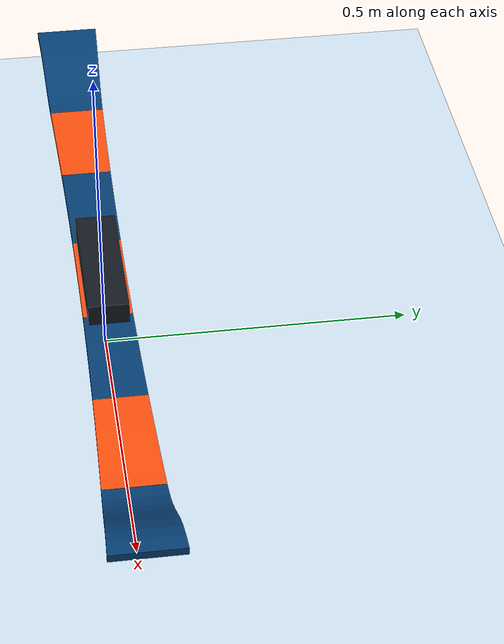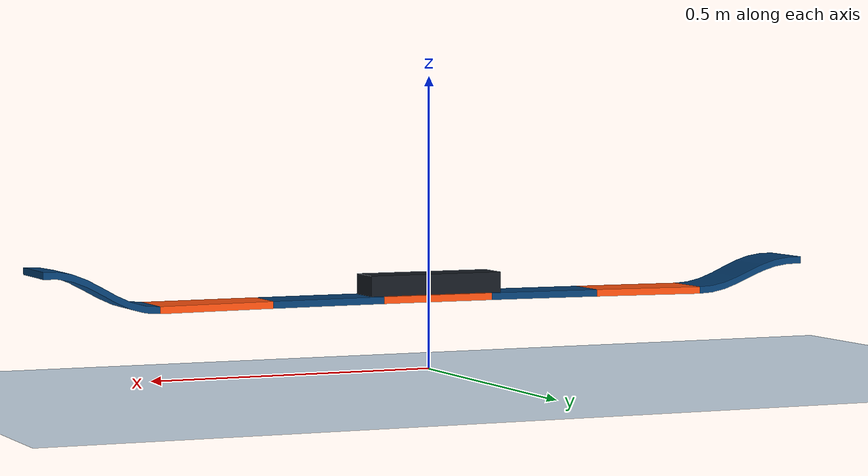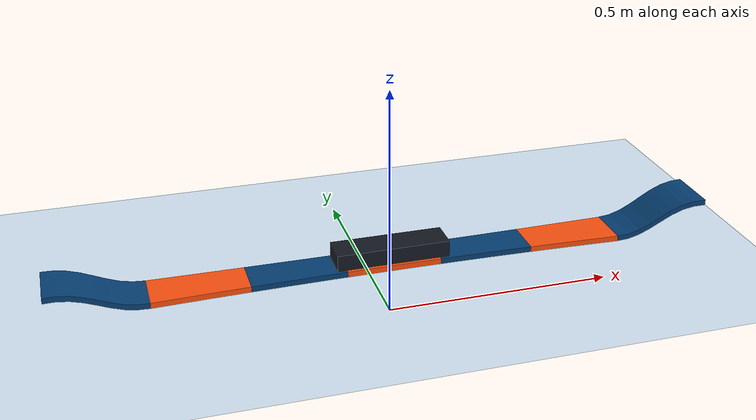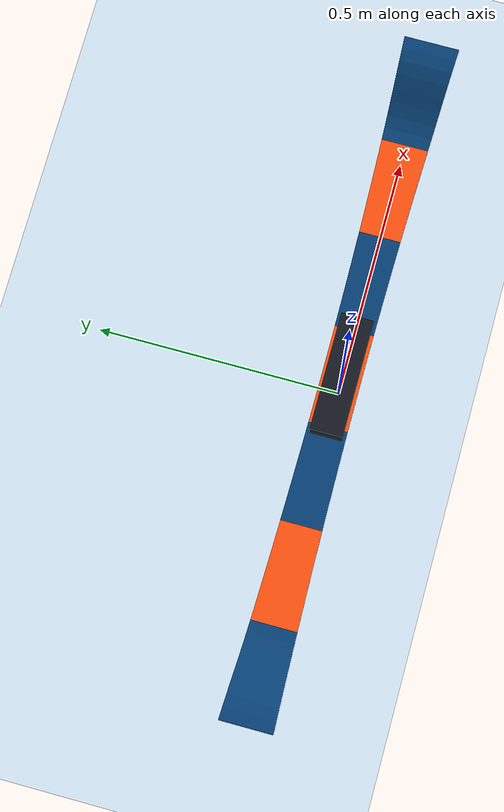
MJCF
<mujoco model="ski_single">
  <compiler angle="radian" autolimits="true" />
  <option timestep="0.00025" gravity="0 0 -9.81" integrator="implicitfast" solver="Newton" cone="elliptic" iterations="80" tolerance="1e-09" />
  <visual>
    <global offwidth="1400" offheight="1000" />
    <headlight ambient=".32 .34 .36" diffuse=".38 .38 .38" specular=".05 .05 .05" />
    <quality shadowsize="2048" />
  </visual>
  <asset>
    <texture name="sky" type="skybox" builtin="gradient" rgb1=".30 .52 .73" rgb2=".86 .92 .97" width="128" height="768" />
    <material name="snow" rgba=".84 .91 .97 1" specular=".18" shininess=".2" />
    <material name="ski_blue" rgba=".02 .25 .46 1" specular=".18" shininess=".2" />
    <material name="ski_orange" rgba="1 .32 .055 1" specular=".18" shininess=".2" />
    <material name="edge" rgba=".25 .32 .37 1" specular=".18" shininess=".2" />
    <material name="binding" rgba=".08 .10 .13 1" specular=".18" shininess=".2" />
    <material name="red" rgba=".95 .09 .12 1" specular=".18" shininess=".2" />
    <material name="blue" rgba=".04 .3 .85 1" specular=".18" shininess=".2" />
    <mesh name="ski_visual_0" file="../meshes/ski_visual_0.obj" />
    <mesh name="ski_base_0_0" file="../meshes/ski_base_0_0.obj" />
    <mesh name="ski_base_0_1" file="../meshes/ski_base_0_1.obj" />
    <mesh name="ski_visual_1" file="../meshes/ski_visual_1.obj" />
    <mesh name="ski_base_1_0" file="../meshes/ski_base_1_0.obj" />
    <mesh name="ski_base_1_1" file="../meshes/ski_base_1_1.obj" />
    <mesh name="ski_visual_2" file="../meshes/ski_visual_2.obj" />
    <mesh name="ski_base_2_0" file="../meshes/ski_base_2_0.obj" />
    <mesh name="ski_base_2_1" file="../meshes/ski_base_2_1.obj" />
    <mesh name="ski_visual_3" file="../meshes/ski_visual_3.obj" />
    <mesh name="ski_base_3_0" file="../meshes/ski_base_3_0.obj" />
    <mesh name="ski_base_3_1" file="../meshes/ski_base_3_1.obj" />
    <mesh name="ski_visual_4" file="../meshes/ski_visual_4.obj" />
    <mesh name="ski_base_4_0" file="../meshes/ski_base_4_0.obj" />
    <mesh name="ski_base_4_1" file="../meshes/ski_base_4_1.obj" />
    <mesh name="ski_visual_5" file="../meshes/ski_visual_5.obj" />
    <mesh name="ski_base_5_0" file="../meshes/ski_base_5_0.obj" />
    <mesh name="ski_base_5_1" file="../meshes/ski_base_5_1.obj" />
    <mesh name="ski_visual_6" file="../meshes/ski_visual_6.obj" />
    <mesh name="ski_base_6_0" file="../meshes/ski_base_6_0.obj" />
    <mesh name="ski_base_6_1" file="../meshes/ski_base_6_1.obj" />
  </asset>
  <worldbody>
    <light directional="true" pos="0 0 30" dir=".2 1 -.45" diffuse=".95 .94 .92" />
    <geom name="snow_surface" type="plane" size="8 4 .1" material="snow" contype="1" conaffinity="6" condim="3" friction=".05 .0 .0" solref="0.006 1" solimp="0.9 0.95 0.002" margin="0" gap="0" />
    <body name="ski0_mount" pos="0 0 0.12">
      <freejoint name="ski0_free" />
      <inertial pos="0 0 .025" mass="0.25" diaginertia="0.0001213541667 0.001233333333 0.001288020833" />
      <geom name="ski0_binding" type="box" pos="0 0 .025" size=".12 .0325 .02" material="binding" contype="0" conaffinity="0" mass="0" group="2" />
      <site name="ski0_mount_frame" pos="0 0 .045" size=".01" group="5" />
      <body name="ski0_segment_3" pos="0 0 0">
        <inertial pos="0 0 0.004" mass="0.14285714285714285" diaginertia="7.414285714e-05 0.0004779047619 0.0005486190476" />
        <geom name="ski0_visual_3" type="mesh" mesh="ski_visual_3" pos="0 0 0" material="ski_orange" contype="0" conaffinity="0" mass="0" group="2" />
        <geom name="ski0_base_3_0" type="mesh" mesh="ski_base_3_0" pos="0 0 0" rgba=".1 .1 .12 0" contype="2" conaffinity="7" mass="0" group="3" condim="3" friction=".05 .0 .0" solref="0.006 1" solimp="0.9 0.95 0.002" margin="0" gap="0" />
        <geom name="ski0_edge_3_0_R" type="capsule" fromto="-0.1 -0.03728571429 -8.163265306e-05 0 -0.037 0" size="0.002" material="edge" contype="2" conaffinity="7" mass="0" group="3" condim="3" friction=".05 .0 .0" solref="0.006 1" solimp="0.9 0.95 0.002" margin="0" gap="0" />
        <geom name="ski0_edge_3_0_L" type="capsule" fromto="-0.1 0.03728571429 -8.163265306e-05 0 0.037 0" size="0.002" material="edge" contype="2" conaffinity="7" mass="0" group="3" condim="3" friction=".05 .0 .0" solref="0.006 1" solimp="0.9 0.95 0.002" margin="0" gap="0" />
        <geom name="ski0_base_3_1" type="mesh" mesh="ski_base_3_1" pos="0 0 0" rgba=".1 .1 .12 0" contype="2" conaffinity="7" mass="0" group="3" condim="3" friction=".05 .0 .0" solref="0.006 1" solimp="0.9 0.95 0.002" margin="0" gap="0" />
        <geom name="ski0_edge_3_1_R" type="capsule" fromto="0 -0.037 0 0.1 -0.03734693878 -8.163265306e-05" size="0.002" material="edge" contype="2" conaffinity="7" mass="0" group="3" condim="3" friction=".05 .0 .0" solref="0.006 1" solimp="0.9 0.95 0.002" margin="0" gap="0" />
        <geom name="ski0_edge_3_1_L" type="capsule" fromto="0 0.037 0 0.1 0.03734693878 -8.163265306e-05" size="0.002" material="edge" contype="2" conaffinity="7" mass="0" group="3" condim="3" friction=".05 .0 .0" solref="0.006 1" solimp="0.9 0.95 0.002" margin="0" gap="0" />
        <body name="ski0_segment_4" pos="0.1 0 0">
          <joint name="ski0_flex_4" type="hinge" axis="0 1 0" stiffness="325.0" damping="0.8" range="-0.3 0.3" armature="0" frictionloss="0" />
          <inertial pos="0.1 0 0.003673469388" mass="0.14285714285714285" diaginertia="7.938908391e-05 0.0004779047619 0.0005538652744" />
          <geom name="ski0_visual_4" type="mesh" mesh="ski_visual_4" pos="0.1 0 0" material="ski_blue" contype="0" conaffinity="0" mass="0" group="2" />
          <geom name="ski0_base_4_0" type="mesh" mesh="ski_base_4_0" pos="0.1 0 0" rgba=".1 .1 .12 0" contype="2" conaffinity="7" mass="0" group="3" condim="3" friction=".05 .0 .0" solref="0.006 1" solimp="0.9 0.95 0.002" margin="0" gap="0" />
          <geom name="ski0_edge_4_0_R" type="capsule" fromto="0 -0.03734693878 -8.163265306e-05 0.1 -0.0383877551 -0.0003265306122" size="0.002" material="edge" contype="2" conaffinity="7" mass="0" group="3" condim="3" friction=".05 .0 .0" solref="0.006 1" solimp="0.9 0.95 0.002" margin="0" gap="0" />
          <geom name="ski0_edge_4_0_L" type="capsule" fromto="0 0.03734693878 -8.163265306e-05 0.1 0.0383877551 -0.0003265306122" size="0.002" material="edge" contype="2" conaffinity="7" mass="0" group="3" condim="3" friction=".05 .0 .0" solref="0.006 1" solimp="0.9 0.95 0.002" margin="0" gap="0" />
          <geom name="ski0_base_4_1" type="mesh" mesh="ski_base_4_1" pos="0.1 0 0" rgba=".1 .1 .12 0" contype="2" conaffinity="7" mass="0" group="3" condim="3" friction=".05 .0 .0" solref="0.006 1" solimp="0.9 0.95 0.002" margin="0" gap="0" />
          <geom name="ski0_edge_4_1_R" type="capsule" fromto="0.1 -0.0383877551 -0.0003265306122 0.2 -0.04012244898 -0.0007346938776" size="0.002" material="edge" contype="2" conaffinity="7" mass="0" group="3" condim="3" friction=".05 .0 .0" solref="0.006 1" solimp="0.9 0.95 0.002" margin="0" gap="0" />
          <geom name="ski0_edge_4_1_L" type="capsule" fromto="0.1 0.0383877551 -0.0003265306122 0.2 0.04012244898 -0.0007346938776" size="0.002" material="edge" contype="2" conaffinity="7" mass="0" group="3" condim="3" friction=".05 .0 .0" solref="0.006 1" solimp="0.9 0.95 0.002" margin="0" gap="0" />
          <body name="ski0_segment_5" pos="0.2 0 0">
            <joint name="ski0_flex_5" type="hinge" axis="0 1 0" stiffness="325.0" damping="0.8" range="-0.3 0.3" armature="0" frictionloss="0" />
            <inertial pos="0.1 0 0.002693877551" mass="0.14285714285714285" diaginertia="9.622825807e-05 0.0004779047619 0.0005707044485" />
            <geom name="ski0_visual_5" type="mesh" mesh="ski_visual_5" pos="0.1 0 0" material="ski_orange" contype="0" conaffinity="0" mass="0" group="2" />
            <geom name="ski0_base_5_0" type="mesh" mesh="ski_base_5_0" pos="0.1 0 0" rgba=".1 .1 .12 0" contype="2" conaffinity="7" mass="0" group="3" condim="3" friction=".05 .0 .0" solref="0.006 1" solimp="0.9 0.95 0.002" margin="0" gap="0" />
            <geom name="ski0_edge_5_0_R" type="capsule" fromto="0 -0.04012244898 -0.0007346938776 0.1 -0.04255102041 -0.001306122449" size="0.002" material="edge" contype="2" conaffinity="7" mass="0" group="3" condim="3" friction=".05 .0 .0" solref="0.006 1" solimp="0.9 0.95 0.002" margin="0" gap="0" />
            <geom name="ski0_edge_5_0_L" type="capsule" fromto="0 0.04012244898 -0.0007346938776 0.1 0.04255102041 -0.001306122449" size="0.002" material="edge" contype="2" conaffinity="7" mass="0" group="3" condim="3" friction=".05 .0 .0" solref="0.006 1" solimp="0.9 0.95 0.002" margin="0" gap="0" />
            <geom name="ski0_base_5_1" type="mesh" mesh="ski_base_5_1" pos="0.1 0 0" rgba=".1 .1 .12 0" contype="2" conaffinity="7" mass="0" group="3" condim="3" friction=".05 .0 .0" solref="0.006 1" solimp="0.9 0.95 0.002" margin="0" gap="0" />
            <geom name="ski0_edge_5_1_R" type="capsule" fromto="0.1 -0.04255102041 -0.001306122449 0.2 -0.04567346939 -0.001975547373" size="0.002" material="edge" contype="2" conaffinity="7" mass="0" group="3" condim="3" friction=".05 .0 .0" solref="0.006 1" solimp="0.9 0.95 0.002" margin="0" gap="0" />
            <geom name="ski0_edge_5_1_L" type="capsule" fromto="0.1 0.04255102041 -0.001306122449 0.2 0.04567346939 -0.001975547373" size="0.002" material="edge" contype="2" conaffinity="7" mass="0" group="3" condim="3" friction=".05 .0 .0" solref="0.006 1" solimp="0.9 0.95 0.002" margin="0" gap="0" />
            <body name="ski0_segment_6" pos="0.2 0 0">
              <joint name="ski0_flex_6" type="hinge" axis="0 1 0" stiffness="325.0" damping="0.8" range="-0.3 0.3" armature="0" frictionloss="0" />
              <inertial pos="0.1 0 0.03645862651" mass="0.14285714285714285" diaginertia="0.0001279618611 0.0004779047619 0.0006024380516" />
              <geom name="ski0_visual_6" type="mesh" mesh="ski_visual_6" pos="0.1 0 0" material="ski_blue" contype="0" conaffinity="0" mass="0" group="2" />
              <geom name="ski0_base_6_0" type="mesh" mesh="ski_base_6_0" pos="0.1 0 0" rgba=".1 .1 .12 0" contype="2" conaffinity="7" mass="0" group="3" condim="3" friction=".05 .0 .0" solref="0.006 1" solimp="0.9 0.95 0.002" margin="0" gap="0" />
              <geom name="ski0_edge_6_0_R" type="capsule" fromto="0 -0.04567346939 -0.001975547373 0.1 -0.04948979592 0.03245862651" size="0.002" material="edge" contype="2" conaffinity="7" mass="0" group="3" condim="3" friction=".05 .0 .0" solref="0.006 1" solimp="0.9 0.95 0.002" margin="0" gap="0" />
              <geom name="ski0_edge_6_0_L" type="capsule" fromto="0 0.04567346939 -0.001975547373 0.1 0.04948979592 0.03245862651" size="0.002" material="edge" contype="2" conaffinity="7" mass="0" group="3" condim="3" friction=".05 .0 .0" solref="0.006 1" solimp="0.9 0.95 0.002" margin="0" gap="0" />
              <geom name="ski0_base_6_1" type="mesh" mesh="ski_base_6_1" pos="0.1 0 0" rgba=".1 .1 .12 0" contype="2" conaffinity="7" mass="0" group="3" condim="3" friction=".05 .0 .0" solref="0.006 1" solimp="0.9 0.95 0.002" margin="0" gap="0" />
              <geom name="ski0_edge_6_1_R" type="capsule" fromto="0.1 -0.04948979592 0.03245862651 0.2 -0.054 0.061" size="0.002" material="edge" contype="2" conaffinity="7" mass="0" group="3" condim="3" friction=".05 .0 .0" solref="0.006 1" solimp="0.9 0.95 0.002" margin="0" gap="0" />
              <geom name="ski0_edge_6_1_L" type="capsule" fromto="0.1 0.04948979592 0.03245862651 0.2 0.054 0.061" size="0.002" material="edge" contype="2" conaffinity="7" mass="0" group="3" condim="3" friction=".05 .0 .0" solref="0.006 1" solimp="0.9 0.95 0.002" margin="0" gap="0" />
            </body>
          </body>
        </body>
        <body name="ski0_segment_2" pos="-0.1 0 0">
          <joint name="ski0_flex_2" type="hinge" axis="0 1 0" stiffness="325.0" damping="0.8" range="-0.3 0.3" armature="0" frictionloss="0" />
          <inertial pos="-0.1 0 0.003673469388" mass="0.14285714285714285" diaginertia="7.844995141e-05 0.0004779047619 0.0005529261419" />
          <geom name="ski0_visual_2" type="mesh" mesh="ski_visual_2" pos="-0.1 0 0" material="ski_blue" contype="0" conaffinity="0" mass="0" group="2" />
          <geom name="ski0_base_2_0" type="mesh" mesh="ski_base_2_0" pos="-0.1 0 0" rgba=".1 .1 .12 0" contype="2" conaffinity="7" mass="0" group="3" condim="3" friction=".05 .0 .0" solref="0.006 1" solimp="0.9 0.95 0.002" margin="0" gap="0" />
          <geom name="ski0_edge_2_0_R" type="capsule" fromto="-0.2 -0.03957142857 -0.0007346938776 -0.1 -0.03814285714 -0.0003265306122" size="0.002" material="edge" contype="2" conaffinity="7" mass="0" group="3" condim="3" friction=".05 .0 .0" solref="0.006 1" solimp="0.9 0.95 0.002" margin="0" gap="0" />
          <geom name="ski0_edge_2_0_L" type="capsule" fromto="-0.2 0.03957142857 -0.0007346938776 -0.1 0.03814285714 -0.0003265306122" size="0.002" material="edge" contype="2" conaffinity="7" mass="0" group="3" condim="3" friction=".05 .0 .0" solref="0.006 1" solimp="0.9 0.95 0.002" margin="0" gap="0" />
          <geom name="ski0_base_2_1" type="mesh" mesh="ski_base_2_1" pos="-0.1 0 0" rgba=".1 .1 .12 0" contype="2" conaffinity="7" mass="0" group="3" condim="3" friction=".05 .0 .0" solref="0.006 1" solimp="0.9 0.95 0.002" margin="0" gap="0" />
          <geom name="ski0_edge_2_1_R" type="capsule" fromto="-0.1 -0.03814285714 -0.0003265306122 -2.775557562e-17 -0.03728571429 -8.163265306e-05" size="0.002" material="edge" contype="2" conaffinity="7" mass="0" group="3" condim="3" friction=".05 .0 .0" solref="0.006 1" solimp="0.9 0.95 0.002" margin="0" gap="0" />
          <geom name="ski0_edge_2_1_L" type="capsule" fromto="-0.1 0.03814285714 -0.0003265306122 -2.775557562e-17 0.03728571429 -8.163265306e-05" size="0.002" material="edge" contype="2" conaffinity="7" mass="0" group="3" condim="3" friction=".05 .0 .0" solref="0.006 1" solimp="0.9 0.95 0.002" margin="0" gap="0" />
          <body name="ski0_segment_1" pos="-0.2 0 0">
            <joint name="ski0_flex_1" type="hinge" axis="0 1 0" stiffness="325.0" damping="0.8" range="-0.3 0.3" armature="0" frictionloss="0" />
            <inertial pos="-0.1 0 0.002693877551" mass="0.14285714285714285" diaginertia="9.211758989e-05 0.0004779047619 0.0005665937804" />
            <geom name="ski0_visual_1" type="mesh" mesh="ski_visual_1" pos="-0.1 0 0" material="ski_orange" contype="0" conaffinity="0" mass="0" group="2" />
            <geom name="ski0_base_1_0" type="mesh" mesh="ski_base_1_0" pos="-0.1 0 0" rgba=".1 .1 .12 0" contype="2" conaffinity="7" mass="0" group="3" condim="3" friction=".05 .0 .0" solref="0.006 1" solimp="0.9 0.95 0.002" margin="0" gap="0" />
            <geom name="ski0_edge_1_0_R" type="capsule" fromto="-0.2 -0.04414285714 -0.001990609439 -0.1 -0.04157142857 -0.001306122449" size="0.002" material="edge" contype="2" conaffinity="7" mass="0" group="3" condim="3" friction=".05 .0 .0" solref="0.006 1" solimp="0.9 0.95 0.002" margin="0" gap="0" />
            <geom name="ski0_edge_1_0_L" type="capsule" fromto="-0.2 0.04414285714 -0.001990609439 -0.1 0.04157142857 -0.001306122449" size="0.002" material="edge" contype="2" conaffinity="7" mass="0" group="3" condim="3" friction=".05 .0 .0" solref="0.006 1" solimp="0.9 0.95 0.002" margin="0" gap="0" />
            <geom name="ski0_base_1_1" type="mesh" mesh="ski_base_1_1" pos="-0.1 0 0" rgba=".1 .1 .12 0" contype="2" conaffinity="7" mass="0" group="3" condim="3" friction=".05 .0 .0" solref="0.006 1" solimp="0.9 0.95 0.002" margin="0" gap="0" />
            <geom name="ski0_edge_1_1_R" type="capsule" fromto="-0.1 -0.04157142857 -0.001306122449 0 -0.03957142857 -0.0007346938776" size="0.002" material="edge" contype="2" conaffinity="7" mass="0" group="3" condim="3" friction=".05 .0 .0" solref="0.006 1" solimp="0.9 0.95 0.002" margin="0" gap="0" />
            <geom name="ski0_edge_1_1_L" type="capsule" fromto="-0.1 0.04157142857 -0.001306122449 0 0.03957142857 -0.0007346938776" size="0.002" material="edge" contype="2" conaffinity="7" mass="0" group="3" condim="3" friction=".05 .0 .0" solref="0.006 1" solimp="0.9 0.95 0.002" margin="0" gap="0" />
            <body name="ski0_segment_0" pos="-0.2 0 0">
              <joint name="ski0_flex_0" type="hinge" axis="0 1 0" stiffness="325.0" damping="0.8" range="-0.3 0.3" armature="0" frictionloss="0" />
              <inertial pos="-0.1 0 0.02828999528" mass="0.14285714285714285" diaginertia="0.0001173848397 0.0004779047619 0.0005918610301" />
              <geom name="ski0_visual_0" type="mesh" mesh="ski_visual_0" pos="-0.1 0 0" material="ski_blue" contype="0" conaffinity="0" mass="0" group="2" />
              <geom name="ski0_base_0_0" type="mesh" mesh="ski_base_0_0" pos="-0.1 0 0" rgba=".1 .1 .12 0" contype="2" conaffinity="7" mass="0" group="3" condim="3" friction=".05 .0 .0" solref="0.006 1" solimp="0.9 0.95 0.002" margin="0" gap="0" />
              <geom name="ski0_edge_0_0_R" type="capsule" fromto="-0.2 -0.051 0.046 -0.1 -0.04728571429 0.02428999528" size="0.002" material="edge" contype="2" conaffinity="7" mass="0" group="3" condim="3" friction=".05 .0 .0" solref="0.006 1" solimp="0.9 0.95 0.002" margin="0" gap="0" />
              <geom name="ski0_edge_0_0_L" type="capsule" fromto="-0.2 0.051 0.046 -0.1 0.04728571429 0.02428999528" size="0.002" material="edge" contype="2" conaffinity="7" mass="0" group="3" condim="3" friction=".05 .0 .0" solref="0.006 1" solimp="0.9 0.95 0.002" margin="0" gap="0" />
              <geom name="ski0_base_0_1" type="mesh" mesh="ski_base_0_1" pos="-0.1 0 0" rgba=".1 .1 .12 0" contype="2" conaffinity="7" mass="0" group="3" condim="3" friction=".05 .0 .0" solref="0.006 1" solimp="0.9 0.95 0.002" margin="0" gap="0" />
              <geom name="ski0_edge_0_1_R" type="capsule" fromto="-0.1 -0.04728571429 0.02428999528 0 -0.04414285714 -0.001990609439" size="0.002" material="edge" contype="2" conaffinity="7" mass="0" group="3" condim="3" friction=".05 .0 .0" solref="0.006 1" solimp="0.9 0.95 0.002" margin="0" gap="0" />
              <geom name="ski0_edge_0_1_L" type="capsule" fromto="-0.1 0.04728571429 0.02428999528 0 0.04414285714 -0.001990609439" size="0.002" material="edge" contype="2" conaffinity="7" mass="0" group="3" condim="3" friction=".05 .0 .0" solref="0.006 1" solimp="0.9 0.95 0.002" margin="0" gap="0" />
            </body>
          </body>
        </body>
      </body>
    </body>
  </worldbody>
</mujoco>
